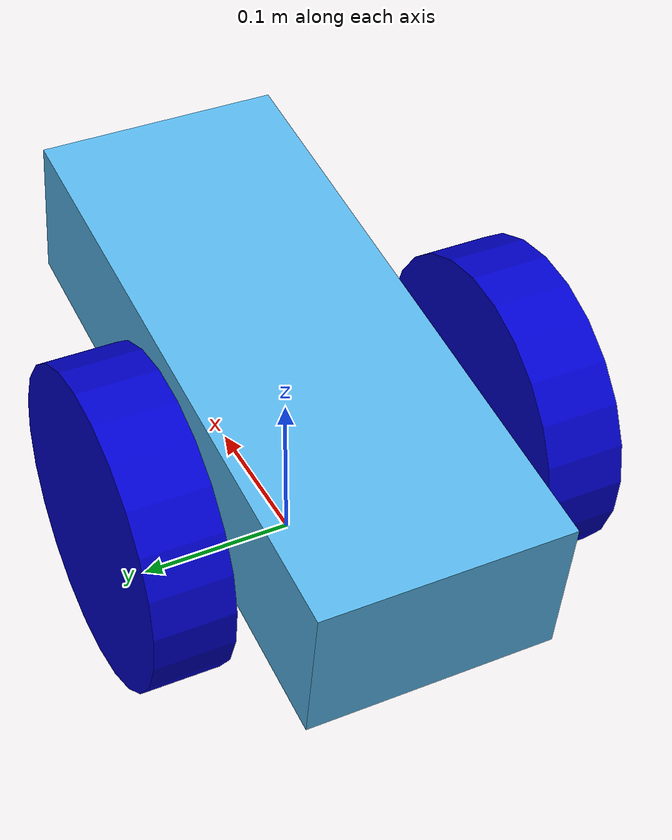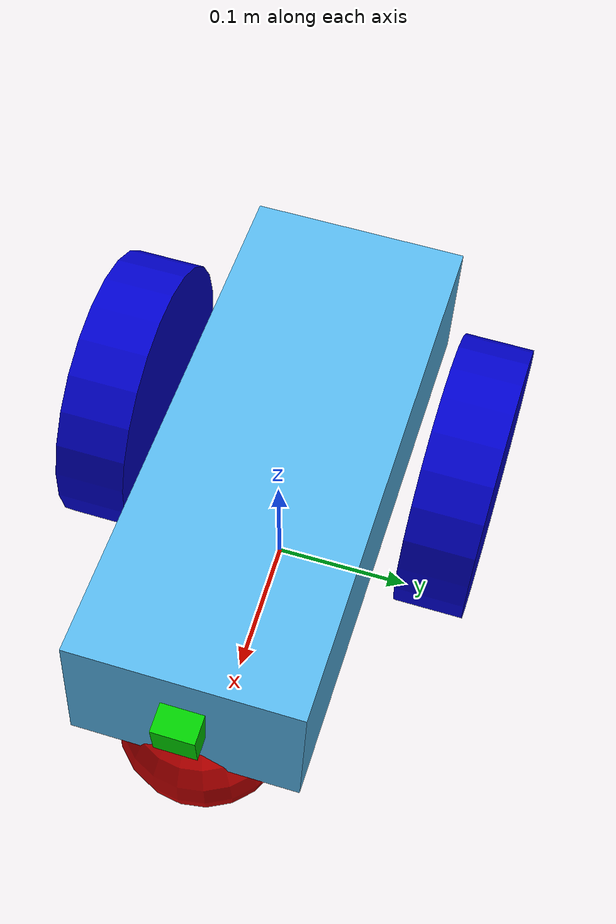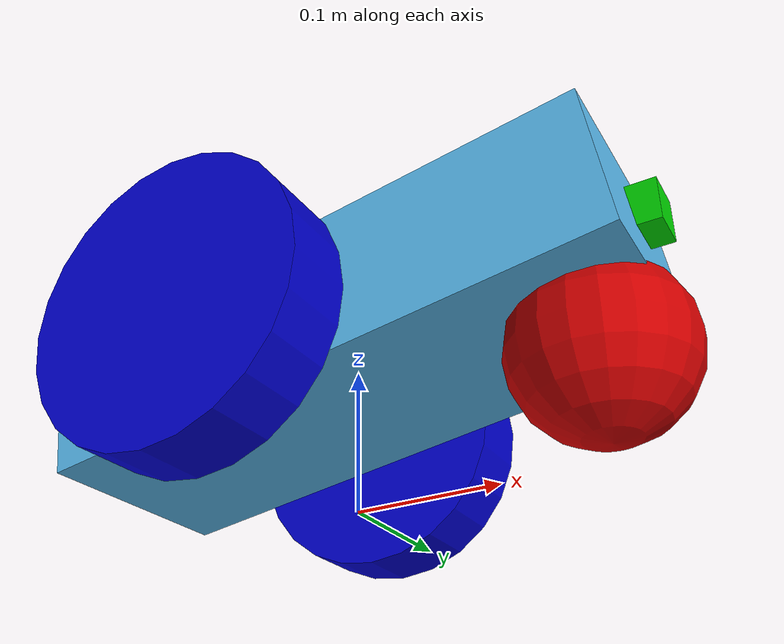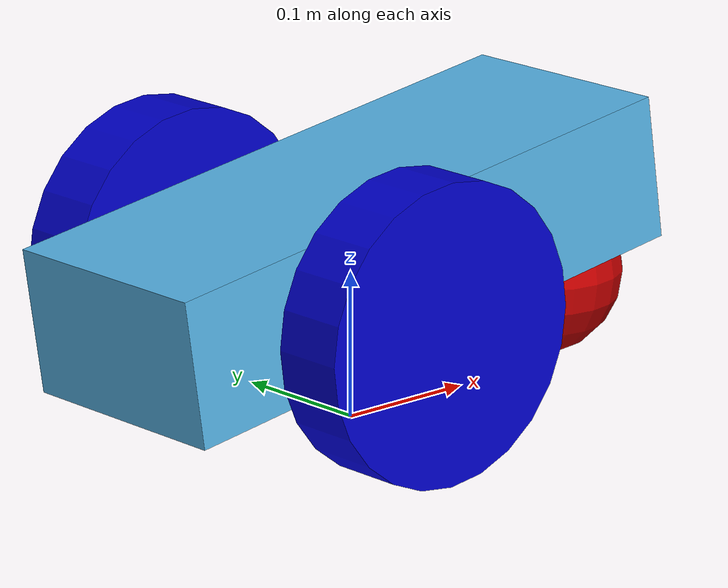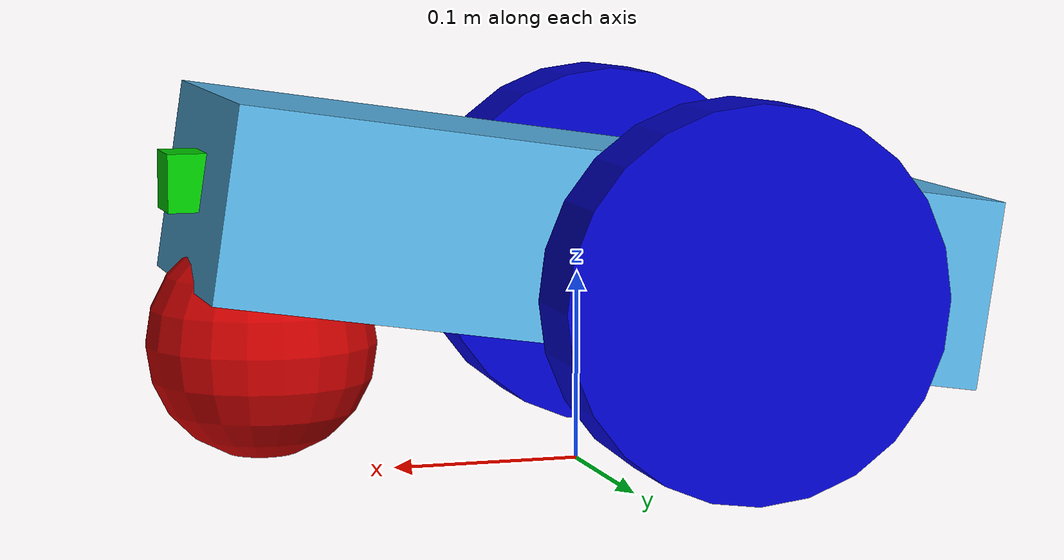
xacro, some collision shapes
<?xml version="1.0"?>
<robot xmlns:xacro="http://www.ros.org/wiki/xacro" name="batmobile">
    <xacro:macro name="material_color" params="name rgba">
        <material name="${name}"><color rgba="${rgba}" /></material>
    </xacro:macro>
    <xacro:material_color name="blue" rgba="0.0 0.0 0.8 1.0" />
    <xacro:material_color name="green" rgba="0.0 0.8 0.0 1.0" />
    <xacro:material_color name="red" rgba="0.8 0.0 0.0 1.0" /> <!--material -->
    <gazebo>
        <plugin name="differential_drive_controller" filename="libgazebo_ros_diff_drive.so">
            <leftJoint>left_wheel_joint</leftJoint>
            <rightJoint>right_wheel_joint</rightJoint>
            <wheelSeparation>0.21</wheelSeparation>
            <wheelDiameter>0.2</wheelDiameter>
            <wheelAcceleration>10.0</wheelAcceleration>
            <robotBaseFrame>root_link</robotBaseFrame>
            <publishWheelTF>true</publishWheelTF>
        </plugin>
    </gazebo>
    <gazebo>
        <plugin name="imu_plugin" filename="libgazebo_ros_imu.so">
          <alwaysOn>true</alwaysOn>
          <bodyName>imu_link</bodyName>
          <topicName>imu</topicName>
          <serviceName>imu_service</serviceName>
          <gaussianNoise>0.0</gaussianNoise>
          <updateRate>20.0</updateRate>
        </plugin>
      </gazebo>
    <xacro:property name="default3d" value="0 0 0" />
    <xacro:macro name="inertial" params="mass ixx iyy izz originrpy:=${default3d}">
        <inertial>
            <origin rpy="${originrpy}" />
            <mass value="${mass}" />
            <inertia ixx="${ixx}" ixy="0.0" ixz="0.0" iyy="${iyy}" iyz="0.0" izz="${izz}" />
        </inertial>
    </xacro:macro> <!-- from include inertial_macros -->
    <xacro:macro name="gazebo_material" params="color reference">
        <gazebo reference="${reference}">
            <material>${color}</material>
        </gazebo>
    </xacro:macro>
    <xacro:macro name="collision_visual" params="*geometry *material">
        <collision>
            <xacro:insert_block name="geometry" />
        </collision>
        <visual>
            <xacro:insert_block name="geometry" />
            <xacro:insert_block name="material" />
        </visual>
    </xacro:macro>
    <xacro:macro name="joint" params="name type parent child axisxyz:=${default3d} originxyz:=${default3d} originrpy:=${default3d}">
        <joint name="${name}" type="${type}">
            <parent link="${parent}" />
            <child link="${child}" />
            <axis xyz="${axisxyz}" />
            <origin xyz="${originxyz}" rpy="${originrpy}" />
        </joint>
    </xacro:macro>
    <xacro:macro name="wheel_link" params="prefix reflect:=1">
        <link name="${prefix}_wheel_link">
            <xacro:collision_visual>
                <geometry>
                    <cylinder radius="0.1" length="0.05" />
                </geometry>
                <material name="blue" />
            </xacro:collision_visual>
            <xacro:inertial mass="2.5" ixx="${(1/12) * 2.5 * (3*.1*.1 + 0.05*0.05)}" iyy="${(1/12) * 2.5 * (3*.1*.1 + 0.05*0.05)}" izz="${(1/2) * 2.5 * (.1*.1)}" />
        </link>
        <xacro:gazebo_material color="Gazebo/Blue" reference="${prefix}_wheel_link" />
        <xacro:joint name="${prefix}_wheel_joint" type="continuous" parent="root_link" child="${prefix}_wheel_link" axisxyz="0 0 ${reflect}" originxyz="-0.05 ${reflect*0.125} 0" originrpy="${-1 * reflect * pi/2} 0 0" />
    </xacro:macro>
    <link name="base_link" /><link name="root_link">
        <visual>
            <origin xyz="0.0 0.0 0.02" rpy="0. -0.15 0.0" />
            <geometry>
                <mesh filename="package://batmobile/meshes/chassis.dae" scale="0.9 0.5 0.5" />
            </geometry>
        </visual>
        <collision>
            <origin xyz="0.0 0.0 0.02" rpy="0. -0.15 0.0" />
            <geometry>
                <box size=".41 .16 .1" />
            </geometry>
        </collision>
        <xacro:inertial mass="10" originrpy="0. -0.05 0.0" ixx="${(1/12) * 10 * (.16*.16+.1*.1)}" iyy="${(1/12) * 10 * (.41*.41+.1*.1)}" izz="${(1/12) * 10 * (.41*.41+.16*.16)}" />
    </link>
    <xacro:wheel_link prefix="left" />
    <xacro:wheel_link prefix="right" reflect="-1" />
    <link name="caster_wheel_link">
        <xacro:collision_visual>
            <geometry>
                <sphere radius="0.06" />
            </geometry>
            <material name="red" />
        </xacro:collision_visual>
        <xacro:inertial mass="0.1" ixx="${(2/5) * 0.1*0.06*0.06}" iyy="${(2/5)*0.1*0.06*0.06}" izz="${(2/5)*0.1*0.06*0.06}" />
    </link>
    <link name="caster_wheel_holder">
        <xacro:collision_visual>
            <geometry>
                <cylinder length="0.01" radius="0.001" />
            </geometry>
            <material name="green"/>
        </xacro:collision_visual>
    </link>
    <xacro:gazebo_material color="Gazebo/Blue" reference="caster_wheel_link" />
    <xacro:joint name="base_joint" originxyz="0 0 .1" child="root_link" parent="base_link" type="fixed" />
    <xacro:joint name="caster_wheel_holder_joint" type="continuous" axisxyz="0 0 1" parent="root_link" child="caster_wheel_holder" originxyz="${0.2-0.03} 0.0 -0.03" />
    <xacro:joint name="caster_wheel_joint" type="continuous" axisxyz="0 1 0" parent="root_link" child="caster_wheel_link" originxyz="${0.2-0.03} 0.0 -0.03" />
    <link name="imu_link">
        <xacro:collision_visual>
            <geometry>
                <box size="0.03 0.03 0.03" /><origin xyz="0 0 ${sin(0.15)*.4}" />
            </geometry>
            <material name="green" />
        </xacro:collision_visual>
    </link>
    <xacro:joint name="imu_joint" type="fixed" parent="root_link" child="imu_link" originxyz=".205 0 .055" />
</robot>
